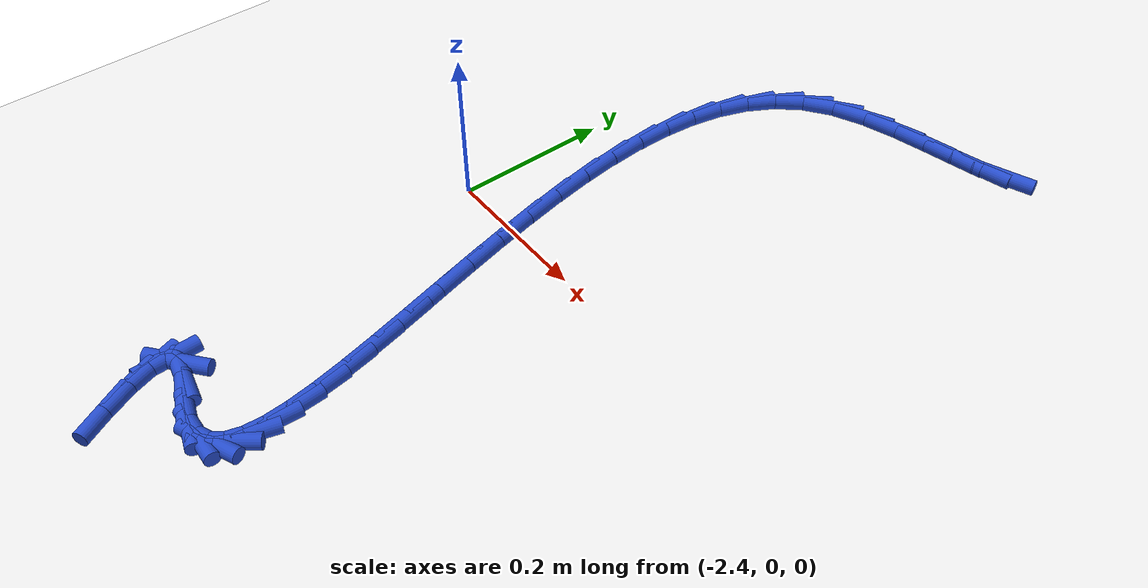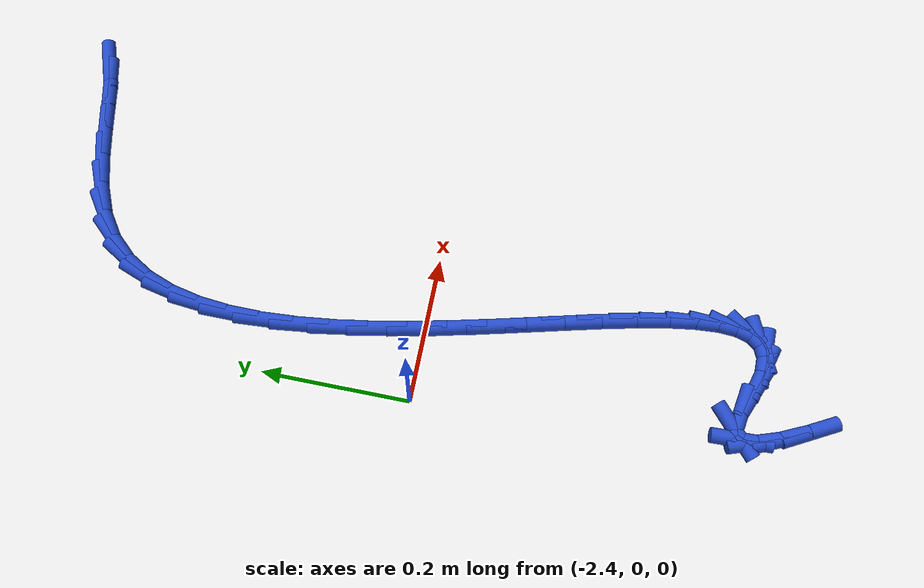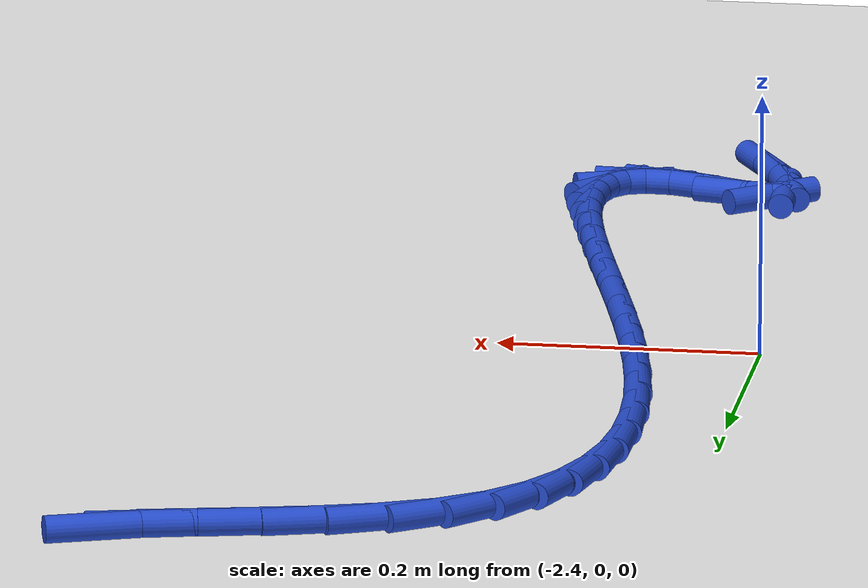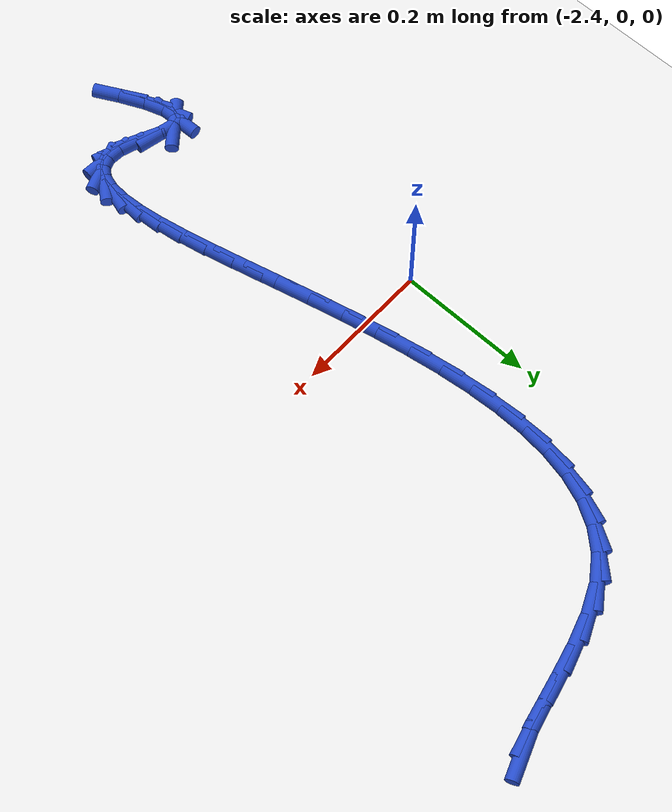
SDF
<sdf version="1.6">
 <world name="default">
  <model name="ground_plane">
   <static>1</static>
   <link name="link">
    <collision name="collision">
     <geometry><plane><normal>0 0 1</normal><size>100 100</size></plane></geometry>
     <surface><friction><ode><mu>100</mu><mu2>50</mu2></ode></friction></surface>
    </collision>
    <visual name="visual">
     <cast_shadows>0</cast_shadows>
     <geometry><plane><normal>0 0 1</normal><size>100 100</size></plane></geometry>
     <material>
      <script><uri>file://media/materials/scripts/gazebo.material</uri><name>Gazebo/WhiteGlow</name></script>
     </material>
    </visual>
   </link>
  </model>
  <model name="line">
   <link name="link_97">
    <pose>-1.9970766462465654 0.5413874922426668 0.01 0 1.57 0.36144930947251863</pose>
    <collision name="collision">
     <geometry><cylinder><radius>0.01</radius><length>0.08</length></cylinder></geometry>
    </collision>
    <visual name="visual">
     <material>
      <script><name>Gazebo/Blue</name><uri>file://media/materials/scripts/gazebo.material</uri></script>
     </material>
     <geometry><cylinder><radius>0.01</radius><length>0.08</length></cylinder></geometry>
    </visual>
   </link>
   <link name="link_98">
    <pose>-2.024862533997269 0.5308828039134791 0.01 0 1.57 0.24762685957653766</pose>
    <collision name="collision">
     <geometry><cylinder><radius>0.01</radius><length>0.08</length></cylinder></geometry>
    </collision>
    <visual name="visual">
     <material>
      <script><name>Gazebo/Blue</name><uri>file://media/materials/scripts/gazebo.material</uri></script>
     </material>
     <geometry><cylinder><radius>0.01</radius><length>0.08</length></cylinder></geometry>
    </visual>
   </link>
   <link name="link_99">
    <pose>-2.061044263977869 0.5217354988861347 0.01 0 1.57 0.21842025667227843</pose>
    <collision name="collision">
     <geometry><cylinder><radius>0.01</radius><length>0.08</length></cylinder></geometry>
    </collision>
    <visual name="visual">
     <material>
      <script><name>Gazebo/Blue</name><uri>file://media/materials/scripts/gazebo.material</uri></script>
     </material>
     <geometry><cylinder><radius>0.01</radius><length>0.08</length></cylinder></geometry>
    </visual>
   </link>
   <link name="link_100">
    <pose>-2.10253599284104 0.5125259421988688 0.01 0 1.57 0.23985833245882765</pose>
    <collision name="collision">
     <geometry><cylinder><radius>0.01</radius><length>0.08</length></cylinder></geometry>
    </collision>
    <visual name="visual">
     <material>
      <script><name>Gazebo/Blue</name><uri>file://media/materials/scripts/gazebo.material</uri></script>
     </material>
     <geometry><cylinder><radius>0.01</radius><length>0.08</length></cylinder></geometry>
    </visual>
   </link>
   <link name="link_101">
    <pose>-2.146251877239458 0.5018344988899163 0.01 0 1.57 0.3071527815555674</pose>
    <collision name="collision">
     <geometry><cylinder><radius>0.01</radius><length>0.08</length></cylinder></geometry>
    </collision>
    <visual name="visual">
     <material>
      <script><name>Gazebo/Blue</name><uri>file://media/materials/scripts/gazebo.material</uri></script>
     </material>
     <geometry><cylinder><radius>0.01</radius><length>0.08</length></cylinder></geometry>
    </visual>
   </link>
   <link name="link_102">
    <pose>-2.189106073825796 0.48824153399751247 0.01 0 1.57 0.4315004876409992</pose>
    <collision name="collision">
     <geometry><cylinder><radius>0.01</radius><length>0.08</length></cylinder></geometry>
    </collision>
    <visual name="visual">
     <material>
      <script><name>Gazebo/Blue</name><uri>file://media/materials/scripts/gazebo.material</uri></script>
     </material>
     <geometry><cylinder><radius>0.01</radius><length>0.08</length></cylinder></geometry>
    </visual>
   </link>
   <link name="link_103">
    <pose>-2.22801273925273 0.47032741255989163 0.01 0 1.57 0.6258583096492476</pose>
    <collision name="collision">
     <geometry><cylinder><radius>0.01</radius><length>0.08</length></cylinder></geometry>
    </collision>
    <visual name="visual">
     <material>
      <script><name>Gazebo/Blue</name><uri>file://media/materials/scripts/gazebo.material</uri></script>
     </material>
     <geometry><cylinder><radius>0.01</radius><length>0.08</length></cylinder></geometry>
    </visual>
   </link>
   <link name="link_104">
    <pose>-2.2603738118354477 0.4469371417761886 0.01 0 1.57 0.842280792043314</pose>
    <collision name="collision">
     <geometry><cylinder><radius>0.01</radius><length>0.08</length></cylinder></geometry>
    </collision>
    <visual name="visual">
     <material>
      <script><name>Gazebo/Blue</name><uri>file://media/materials/scripts/gazebo.material</uri></script>
     </material>
     <geometry><cylinder><radius>0.01</radius><length>0.08</length></cylinder></geometry>
    </visual>
   </link>
   <link name="link_105">
    <pose>-2.2859961639725257 0.41822050719527565 0.01 0 1.57 1.0450971705151095</pose>
    <collision name="collision">
     <geometry><cylinder><radius>0.01</radius><length>0.08</length></cylinder></geometry>
    </collision>
    <visual name="visual">
     <material>
      <script><name>Gazebo/Blue</name><uri>file://media/materials/scripts/gazebo.material</uri></script>
     </material>
     <geometry><cylinder><radius>0.01</radius><length>0.08</length></cylinder></geometry>
    </visual>
   </link>
   <link name="link_106">
    <pose>-2.305426564627525 0.3847287195134809 0.01 0 1.57 1.2203718458545298</pose>
    <collision name="collision">
     <geometry><cylinder><radius>0.01</radius><length>0.08</length></cylinder></geometry>
    </collision>
    <visual name="visual">
     <material>
      <script><name>Gazebo/Blue</name><uri>file://media/materials/scripts/gazebo.material</uri></script>
     </material>
     <geometry><cylinder><radius>0.01</radius><length>0.08</length></cylinder></geometry>
    </visual>
   </link>
   <link name="link_107">
    <pose>-2.3192119861203406 0.3470130997565326 0.01 0 1.57 1.3638988463719883</pose>
    <collision name="collision">
     <geometry><cylinder><radius>0.01</radius><length>0.08</length></cylinder></geometry>
    </collision>
    <visual name="visual">
     <material>
      <script><name>Gazebo/Blue</name><uri>file://media/materials/scripts/gazebo.material</uri></script>
     </material>
     <geometry><cylinder><radius>0.01</radius><length>0.08</length></cylinder></geometry>
    </visual>
   </link>
   <link name="link_108">
    <pose>-2.3278994007708653 0.3056249689501594 0.01 0 1.57 1.4781295909732357</pose>
    <collision name="collision">
     <geometry><cylinder><radius>0.01</radius><length>0.08</length></cylinder></geometry>
    </collision>
    <visual name="visual">
     <material>
      <script><name>Gazebo/Blue</name><uri>file://media/materials/scripts/gazebo.material</uri></script>
     </material>
     <geometry><cylinder><radius>0.01</radius><length>0.08</length></cylinder></geometry>
    </visual>
   </link>
   <link name="link_109">
    <pose>-2.332035780898994 0.2611156481200916 0.01 0 1.57 1.5679857946316658</pose>
    <collision name="collision">
     <geometry><cylinder><radius>0.01</radius><length>0.08</length></cylinder></geometry>
    </collision>
    <visual name="visual">
     <material>
      <script><name>Gazebo/Blue</name><uri>file://media/materials/scripts/gazebo.material</uri></script>
     </material>
     <geometry><cylinder><radius>0.01</radius><length>0.08</length></cylinder></geometry>
    </visual>
   </link>
   <link name="link_110">
    <pose>-2.332168098824622 0.21403645829205672 0.01 0 1.57 -1.5031821359105366</pose>
    <collision name="collision">
     <geometry><cylinder><radius>0.01</radius><length>0.08</length></cylinder></geometry>
    </collision>
    <visual name="visual">
     <material>
      <script><name>Gazebo/Blue</name><uri>file://media/materials/scripts/gazebo.material</uri></script>
     </material>
     <geometry><cylinder><radius>0.01</radius><length>0.08</length></cylinder></geometry>
    </visual>
   </link>
   <link name="link_111">
    <pose>-2.3288433268676414 0.16493872049178546 0.01 0 1.57 -1.448111058988455</pose>
    <collision name="collision">
     <geometry><cylinder><radius>0.01</radius><length>0.08</length></cylinder></geometry>
    </collision>
    <visual name="visual">
     <material>
      <script><name>Gazebo/Blue</name><uri>file://media/materials/scripts/gazebo.material</uri></script>
     </material>
     <geometry><cylinder><radius>0.01</radius><length>0.08</length></cylinder></geometry>
    </visual>
   </link>
   <link name="link_112">
    <pose>-2.3226084373479465 0.11437375574500522 0.01 0 1.57 -1.4053095594165699</pose>
    <collision name="collision">
     <geometry><cylinder><radius>0.01</radius><length>0.08</length></cylinder></geometry>
    </collision>
    <visual name="visual">
     <material>
      <script><name>Gazebo/Blue</name><uri>file://media/materials/scripts/gazebo.material</uri></script>
     </material>
     <geometry><cylinder><radius>0.01</radius><length>0.08</length></cylinder></geometry>
    </visual>
   </link>
   <link name="link_113">
    <pose>-2.314010402585433 0.06289288507744663 0.01 0 1.57 -1.3725641641813793</pose>
    <collision name="collision">
     <geometry><cylinder><radius>0.01</radius><length>0.08</length></cylinder></geometry>
    </collision>
    <visual name="visual">
     <material>
      <script><name>Gazebo/Blue</name><uri>file://media/materials/scripts/gazebo.material</uri></script>
     </material>
     <geometry><cylinder><radius>0.01</radius><length>0.08</length></cylinder></geometry>
    </visual>
   </link>
   <link name="link_114">
    <pose>-2.3035961948999937 0.01104742951483733 0.01 0 1.57 -1.3483730397441898</pose>
    <collision name="collision">
     <geometry><cylinder><radius>0.01</radius><length>0.08</length></cylinder></geometry>
    </collision>
    <visual name="visual">
     <material>
      <script><name>Gazebo/Blue</name><uri>file://media/materials/scripts/gazebo.material</uri></script>
     </material>
     <geometry><cylinder><radius>0.01</radius><length>0.08</length></cylinder></geometry>
    </visual>
   </link>
   <link name="link_115">
    <pose>-2.2919127866115234 -0.04061128991709231 0.01 0 1.57 -1.3318249322705378</pose>
    <collision name="collision">
     <geometry><cylinder><radius>0.01</radius><length>0.08</length></cylinder></geometry>
    </collision>
    <visual name="visual">
     <material>
      <script><name>Gazebo/Blue</name><uri>file://media/materials/scripts/gazebo.material</uri></script>
     </material>
     <geometry><cylinder><radius>0.01</radius><length>0.08</length></cylinder></geometry>
    </visual>
   </link>
   <link name="link_116">
    <pose>-2.2795071500399158 -0.09153195219261394 0.01 0 1.57 -1.3225383467863738</pose>
    <collision name="collision">
     <geometry><cylinder><radius>0.01</radius><length>0.08</length></cylinder></geometry>
    </collision>
    <visual name="visual">
     <material>
      <script><name>Gazebo/Blue</name><uri>file://media/materials/scripts/gazebo.material</uri></script>
     </material>
     <geometry><cylinder><radius>0.01</radius><length>0.08</length></cylinder></geometry>
    </visual>
   </link>
   <link name="link_117">
    <pose>-2.266926257505065 -0.1411632362859998 0.01 0 1.57 -1.320673823356376</pose>
    <collision name="collision">
     <geometry><cylinder><radius>0.01</radius><length>0.08</length></cylinder></geometry>
    </collision>
    <visual name="visual">
     <material>
      <script><name>Gazebo/Blue</name><uri>file://media/materials/scripts/gazebo.material</uri></script>
     </material>
     <geometry><cylinder><radius>0.01</radius><length>0.08</length></cylinder></geometry>
    </visual>
   </link>
   <link name="link_118">
    <pose>-2.254717081326865 -0.18895382117151804 0.01 0 1.57 -1.327044378228869</pose>
    <collision name="collision">
     <geometry><cylinder><radius>0.01</radius><length>0.08</length></cylinder></geometry>
    </collision>
    <visual name="visual">
     <material>
      <script><name>Gazebo/Blue</name><uri>file://media/materials/scripts/gazebo.material</uri></script>
     </material>
     <geometry><cylinder><radius>0.01</radius><length>0.08</length></cylinder></geometry>
    </visual>
   </link>
   <link name="link_119">
    <pose>-2.2434265938252103 -0.23435238582344117 0.01 0 1.57 -1.3433833077350472</pose>
    <collision name="collision">
     <geometry><cylinder><radius>0.01</radius><length>0.08</length></cylinder></geometry>
    </collision>
    <visual name="visual">
     <material>
      <script><name>Gazebo/Blue</name><uri>file://media/materials/scripts/gazebo.material</uri></script>
     </material>
     <geometry><cylinder><radius>0.01</radius><length>0.08</length></cylinder></geometry>
    </visual>
   </link>
   <link name="link_120">
    <pose>-2.233601767319995 -0.2768076092160401 0.01 0 1.57 -1.3729052220481435</pose>
    <collision name="collision">
     <geometry><cylinder><radius>0.01</radius><length>0.08</length></cylinder></geometry>
    </collision>
    <visual name="visual">
     <material>
      <script><name>Gazebo/Blue</name><uri>file://media/materials/scripts/gazebo.material</uri></script>
     </material>
     <geometry><cylinder><radius>0.01</radius><length>0.08</length></cylinder></geometry>
    </visual>
   </link>
   <link name="link_121">
    <pose>-2.2257895741311122 -0.3157681703235857 0.01 0 1.57 -1.4214750117214412</pose>
    <collision name="collision">
     <geometry><cylinder><radius>0.01</radius><length>0.08</length></cylinder></geometry>
    </collision>
    <visual name="visual">
     <material>
      <script><name>Gazebo/Blue</name><uri>file://media/materials/scripts/gazebo.material</uri></script>
     </material>
     <geometry><cylinder><radius>0.01</radius><length>0.08</length></cylinder></geometry>
    </visual>
   </link>
   <link name="link_122">
    <pose>-2.220536986578457 -0.35068274812034983 0.01 0 1.57 -1.5001291500045086</pose>
    <collision name="collision">
     <geometry><cylinder><radius>0.01</radius><length>0.08</length></cylinder></geometry>
    </collision>
    <visual name="visual">
     <material>
      <script><name>Gazebo/Blue</name><uri>file://media/materials/scripts/gazebo.material</uri></script>
     </material>
     <geometry><cylinder><radius>0.01</radius><length>0.08</length></cylinder></geometry>
    </visual>
   </link>
   <link name="link_123">
    <pose>-2.2183909769819246 -0.38100002158060164 0.01 0 1.57 1.510970242069487</pose>
    <collision name="collision">
     <geometry><cylinder><radius>0.01</radius><length>0.08</length></cylinder></geometry>
    </collision>
    <visual name="visual">
     <material>
      <script><name>Gazebo/Blue</name><uri>file://media/materials/scripts/gazebo.material</uri></script>
     </material>
     <geometry><cylinder><radius>0.01</radius><length>0.08</length></cylinder></geometry>
    </visual>
   </link>
   <link name="link_124">
    <pose>-2.219898517661407 -0.406168669678613 0.01 0 1.57 1.2855972516038467</pose>
    <collision name="collision">
     <geometry><cylinder><radius>0.01</radius><length>0.08</length></cylinder></geometry>
    </collision>
    <visual name="visual">
     <material>
      <script><name>Gazebo/Blue</name><uri>file://media/materials/scripts/gazebo.material</uri></script>
     </material>
     <geometry><cylinder><radius>0.01</radius><length>0.08</length></cylinder></geometry>
    </visual>
   </link>
   <link name="link_125">
    <pose>-2.2256065809367986 -0.4256373713886549 0.01 0 1.57 0.9015409147351732</pose>
    <collision name="collision">
     <geometry><cylinder><radius>0.01</radius><length>0.08</length></cylinder></geometry>
    </collision>
    <visual name="visual">
     <material>
      <script><name>Gazebo/Blue</name><uri>file://media/materials/scripts/gazebo.material</uri></script>
     </material>
     <geometry><cylinder><radius>0.01</radius><length>0.08</length></cylinder></geometry>
    </visual>
   </link>
   <link name="link_126">
    <pose>-2.236062139127995 -0.43885480568499846 0.01 0 1.57 0.3867759997725727</pose>
    <collision name="collision">
     <geometry><cylinder><radius>0.01</radius><length>0.08</length></cylinder></geometry>
    </collision>
    <visual name="visual">
     <material>
      <script><name>Gazebo/Blue</name><uri>file://media/materials/scripts/gazebo.material</uri></script>
     </material>
     <geometry><cylinder><radius>0.01</radius><length>0.08</length></cylinder></geometry>
    </visual>
   </link>
   <link name="link_127">
    <pose>-2.251812164554889 -0.445269651541914 0.01 0 1.57 -0.04346496052852654</pose>
    <collision name="collision">
     <geometry><cylinder><radius>0.01</radius><length>0.08</length></cylinder></geometry>
    </collision>
    <visual name="visual">
     <material>
      <script><name>Gazebo/Blue</name><uri>file://media/materials/scripts/gazebo.material</uri></script>
     </material>
     <geometry><cylinder><radius>0.01</radius><length>0.08</length></cylinder></geometry>
    </visual>
   </link>
   <link name="link_128">
    <pose>-2.2734036295373743 -0.4443305879336731 0.01 0 1.57 -0.3061565032385815</pose>
    <collision name="collision">
     <geometry><cylinder><radius>0.01</radius><length>0.08</length></cylinder></geometry>
    </collision>
    <visual name="visual">
     <material>
      <script><name>Gazebo/Blue</name><uri>file://media/materials/scripts/gazebo.material</uri></script>
     </material>
     <geometry><cylinder><radius>0.01</radius><length>0.08</length></cylinder></geometry>
    </visual>
   </link>
   <link name="link_129">
    <pose>-2.3013835063953465 -0.4354862938345463 0.01 0 1.57 -0.4165431866689635</pose>
    <collision name="collision">
     <geometry><cylinder><radius>0.01</radius><length>0.08</length></cylinder></geometry>
    </collision>
    <visual name="visual">
     <material>
      <script><name>Gazebo/Blue</name><uri>file://media/materials/scripts/gazebo.material</uri></script>
     </material>
     <geometry><cylinder><radius>0.01</radius><length>0.08</length></cylinder></geometry>
    </visual>
   </link>
   <link name="link_130">
    <pose>-2.3334718456817205 -0.4212893624390932 0.01 0 1.57 -0.19980132769813047</pose>
    <collision name="collision">
     <geometry><cylinder><radius>0.01</radius><length>0.08</length></cylinder></geometry>
    </collision>
    <visual name="visual">
     <material>
      <script><name>Gazebo/Blue</name><uri>file://media/materials/scripts/gazebo.material</uri></script>
     </material>
     <geometry><cylinder><radius>0.01</radius><length>0.08</length></cylinder></geometry>
    </visual>
   </link>
   <link name="link_131">
    <pose>-2.3560819848695234 -0.4167107367243325 0.01 0 1.57 0.690418639364166</pose>
    <collision name="collision">
     <geometry><cylinder><radius>0.01</radius><length>0.08</length></cylinder></geometry>
    </collision>
    <visual name="visual">
     <material>
      <script><name>Gazebo/Blue</name><uri>file://media/materials/scripts/gazebo.material</uri></script>
     </material>
     <geometry><cylinder><radius>0.01</radius><length>0.08</length></cylinder></geometry>
    </visual>
   </link>
   <link name="link_132">
    <pose>-2.3662326235308346 -0.42509557187338476 0.01 0 1.57 -1.5407085488992551</pose>
    <collision name="collision">
     <geometry><cylinder><radius>0.01</radius><length>0.08</length></cylinder></geometry>
    </collision>
    <visual name="visual">
     <material>
      <script><name>Gazebo/Blue</name><uri>file://media/materials/scripts/gazebo.material</uri></script>
     </material>
     <geometry><cylinder><radius>0.01</radius><length>0.08</length></cylinder></geometry>
    </visual>
   </link>
   <link name="link_133">
    <pose>-2.3656446407254066 -0.44463192208735464 0.01 0 1.57 -1.2496852060123054</pose>
    <collision name="collision">
     <geometry><cylinder><radius>0.01</radius><length>0.08</length></cylinder></geometry>
    </collision>
    <visual name="visual">
     <material>
      <script><name>Gazebo/Blue</name><uri>file://media/materials/scripts/gazebo.material</uri></script>
     </material>
     <geometry><cylinder><radius>0.01</radius><length>0.08</length></cylinder></geometry>
    </visual>
   </link>
   <link name="link_134">
    <pose>-2.3560403798864846 -0.47350623551949866 0.01 0 1.57 -1.1361535164169765</pose>
    <collision name="collision">
     <geometry><cylinder><radius>0.01</radius><length>0.08</length></cylinder></geometry>
    </collision>
    <visual name="visual">
     <material>
      <script><name>Gazebo/Blue</name><uri>file://media/materials/scripts/gazebo.material</uri></script>
     </material>
     <geometry><cylinder><radius>0.01</radius><length>0.08</length></cylinder></geometry>
    </visual>
   </link>
   <link name="link_135">
    <pose>-2.3391421844473177 -0.509904960323074 0.01 0 1.57 -1.0806293332593608</pose>
    <collision name="collision">
     <geometry><cylinder><radius>0.01</radius><length>0.08</length></cylinder></geometry>
    </collision>
    <visual name="visual">
     <material>
      <script><name>Gazebo/Blue</name><uri>file://media/materials/scripts/gazebo.material</uri></script>
     </material>
     <geometry><cylinder><radius>0.01</radius><length>0.08</length></cylinder></geometry>
    </visual>
   </link>
  </model>
 </world>
</sdf>
